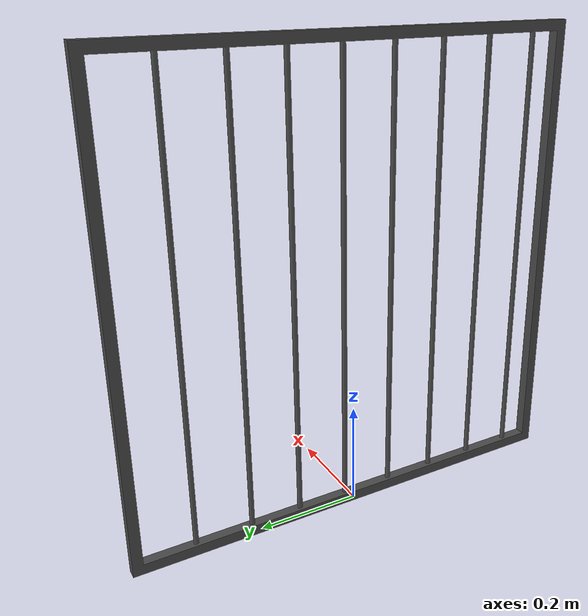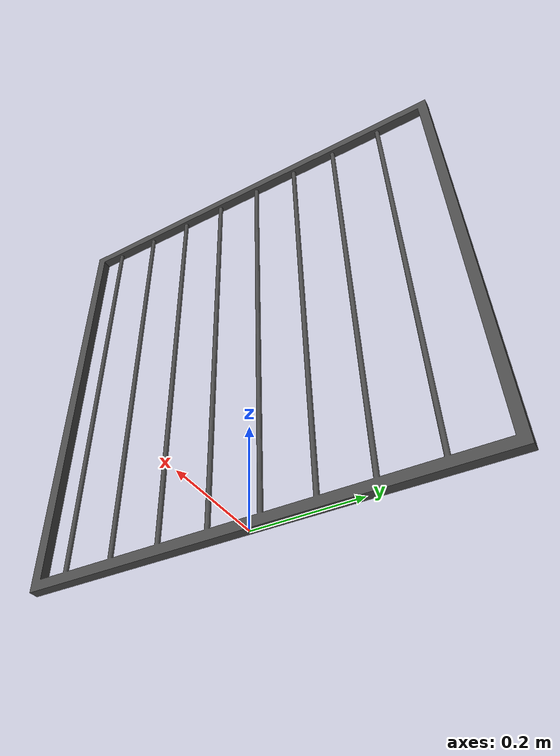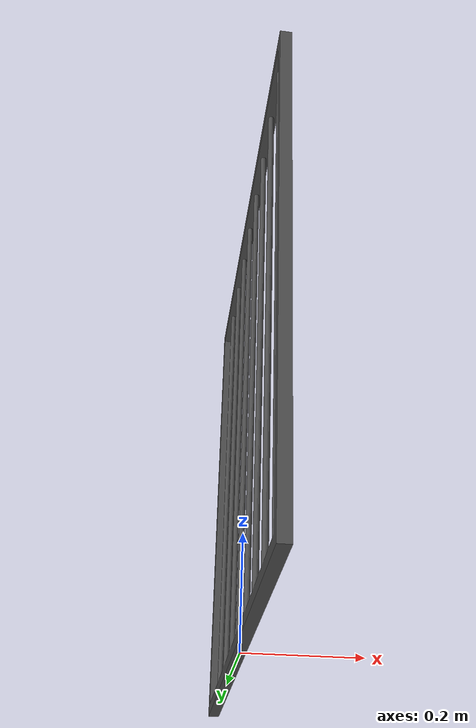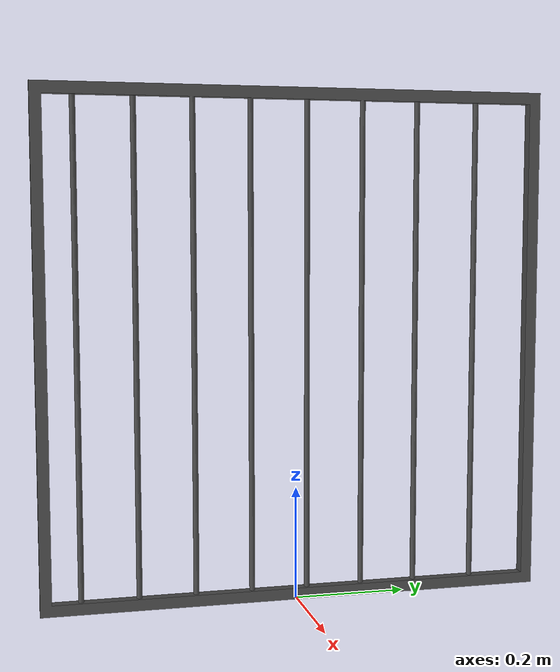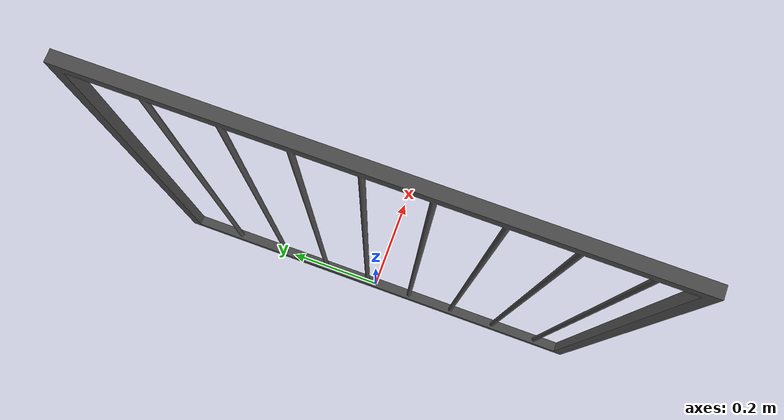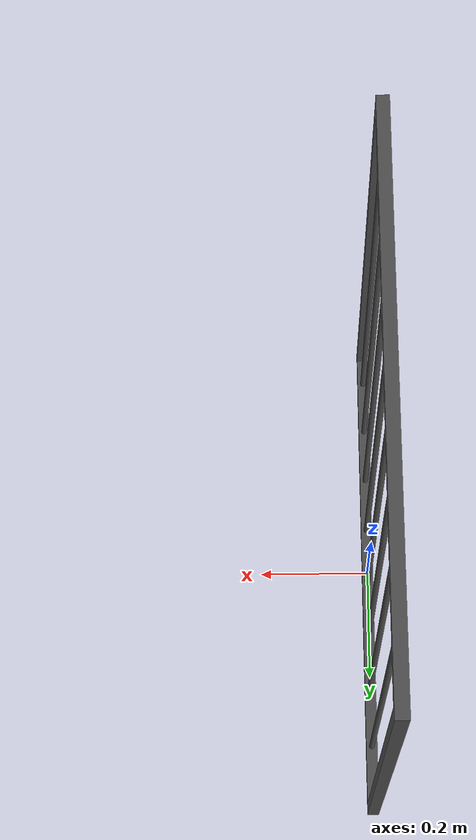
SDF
<?xml version='1.0'?>
<sdf version="1.5">
  <model name="fence"> <!-- Very important to change-->
    <static>true</static>
    <pose>0 0 0 0 0 0</pose> <!-- Translation: X Y Z and Rotation: Roll Pitch Yaw (In Radian)-->
    <link name="body">

    <inertial>
      <mass>25</mass>
        <inertia>
          <ixx>1</ixx>
          <ixy>0</ixy>
          <ixz>0</ixz>
          <iyy>1</iyy>
          <iyz>0</iyz>
          <izz>1</izz>
      </inertia>
    </inertial>

       <collision name="collision"> <!-- You can use mesh like below -->
        <geometry>
          <mesh>
             <uri>/home/sorox23/robotic_ws/master_thesis_ws/src/property_based_tester/environment/models/fence/meshes/fence.stl</uri>
             <scale>0.001 0.001 0.001</scale>
          </mesh>
        </geometry>
      </collision>

      <visual name="visual">
        <geometry>
          <mesh>
             <uri>/home/sorox23/robotic_ws/master_thesis_ws/src/property_based_tester/environment/models/fence/meshes/fence.stl</uri>
             <scale>0.001 0.001 0.001</scale>
          </mesh>
        </geometry>

        <material>
          <script>
             <uri>/home/sorox23/robotic_ws/master_thesis_ws/src/property_based_tester/environment/models/fence/materials/scripts</uri>
             <uri>/home/sorox23/robotic_ws/master_thesis_ws/src/property_based_tester/environment/models/fence/materials/textures</uri>
             <name>Gazebo/DarkGrey</name>
          </script>
        </material>
      </visual>
    </link>
  </model>
</sdf>
